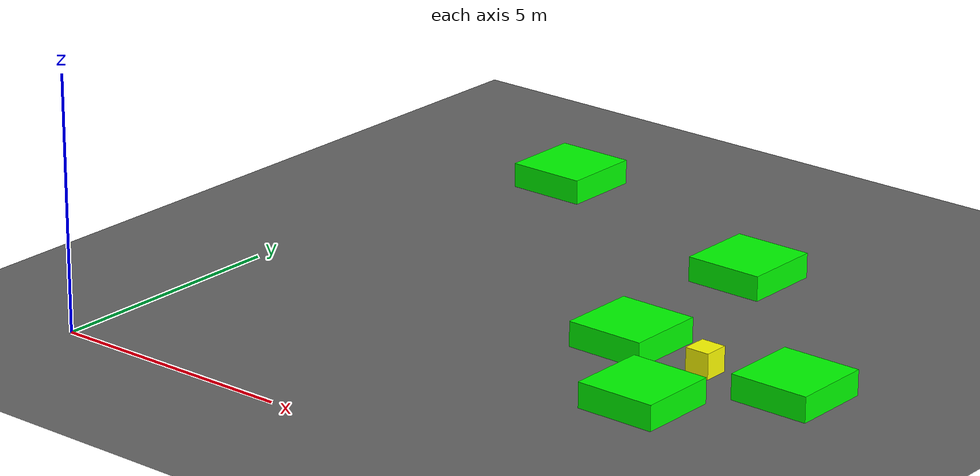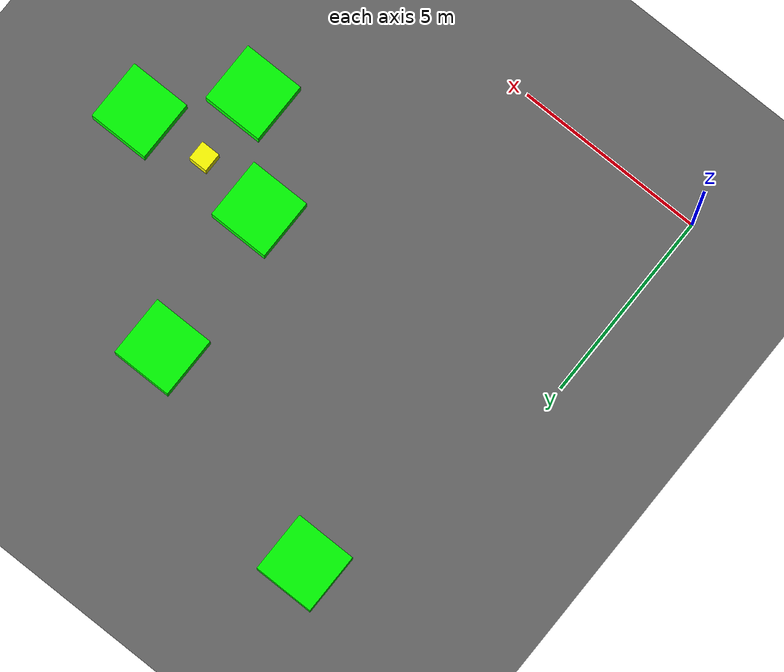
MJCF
<mujoco model="lvl5_deadend_obs10_d10_depth3_seed0">
    <compiler angle="degree" coordinate="local" inertiafromgeom="true"/>
    <option integrator="RK4" timestep="0.01"/>

    <asset>
        <texture builtin="gradient" height="100" rgb1="0.6 0.8 1" rgb2="0 0 0" type="skybox" width="100"/>
        <texture name="floor_texture" type="2d" builtin="checker" width="100" height="100" rgb1="0 0 0" rgb2="0.8 0.8 0.8"/>
        <material name="MatPlane" reflectance="0.5" shininess="1" specular="1" texrepeat="10 10" texture="floor_texture"/>
    </asset>

    <!-- Excluding the contact between the agent and the goal, and the agent and the floor -->
    <contact>
        <exclude body1="agent" body2="goal"/>
        <exclude body1 = "agent" body2 = "floor"/>
    </contact>

    <extension>
        <plugin plugin = "mujoco.pid">
            <instance name = "pid1">
                <config key="kp" value="2"/>
                <config key="ki" value="0"/>
                <config key="kd" value="55"/>
            </instance>
        </plugin>
    </extension>

    <worldbody>
        <light cutoff="100" diffuse="1 1 1" dir="-0 0 -1.3" directional="true" exponent="1" pos="0 0 1.3" specular=".1 .1 .1"/>
        <body name="floor" pos="0 0 0">
            <geom name="floor_geom" type="plane" size="20 20 0.1" material="MatPlane"/>
        </body>

                <body name="goal" pos="12.0000 -12.0000 0">
            <geom name="goal_geom" type="plane" size="0.5 0.5 1" pos="0 0 0" rgba="1 0 0 1"/>
        </body>

                <body name="agent" pos="10.0000 6.0000 0.250">
            <joint name="j1" type="slide" axis ="1 0 0 "/>
            <joint name="j2" type="slide" axis ="0 1 0 "/>
            <geom name="agent_geom" type="box" size="0.25 0.25 0.250" rgba="1 1 0 1"/>
        </body>

        <body name="obstacle1" pos="2.1016 12.0169 0.250">  <geom name="obstacle1_geom" type="box" size="0.8000 0.8000 0.250" rgba="0 1 0 1"/></body>
        <body name="obstacle2" pos="7.9128 10.1421 0.250">  <geom name="obstacle2_geom" type="box" size="0.8000 0.8000 0.250" rgba="0 1 0 1"/></body>
        <body name="obstacle7" pos="8.1972 6.1664 0.250">  <geom name="obstacle7_geom" type="box" size="0.8000 0.8000 0.250" rgba="0 1 0 1"/></body>
        <body name="obstacle8" pos="11.8915 6.1039 0.250">  <geom name="obstacle8_geom" type="box" size="0.8000 0.8000 0.250" rgba="0 1 0 1"/></body>
        <body name="obstacle9" pos="10.0618 4.0833 0.250">  <geom name="obstacle9_geom" type="box" size="0.8000 0.8000 0.250" rgba="0 1 0 1"/></body>

    </worldbody>

    <sensor>
<!-- SENSORS -->

        <distance name="dist1" geom1="agent_geom" geom2="obstacle1_geom" cutoff="1.5"/>
        <distance name="dist2" geom1="agent_geom" geom2="obstacle2_geom" cutoff="1.5"/>
        <distance name="dist7" geom1="agent_geom" geom2="obstacle7_geom" cutoff="1.5"/>
        <distance name="dist8" geom1="agent_geom" geom2="obstacle8_geom" cutoff="1.5"/>
        <distance name="dist9" geom1="agent_geom" geom2="obstacle9_geom" cutoff="1.5"/>
</sensor>

    <actuator>
        <plugin joint="j1" plugin="mujoco.pid" instance="pid1" />
        <plugin joint="j2" plugin="mujoco.pid" instance="pid1"/>
    </actuator>
</mujoco>
